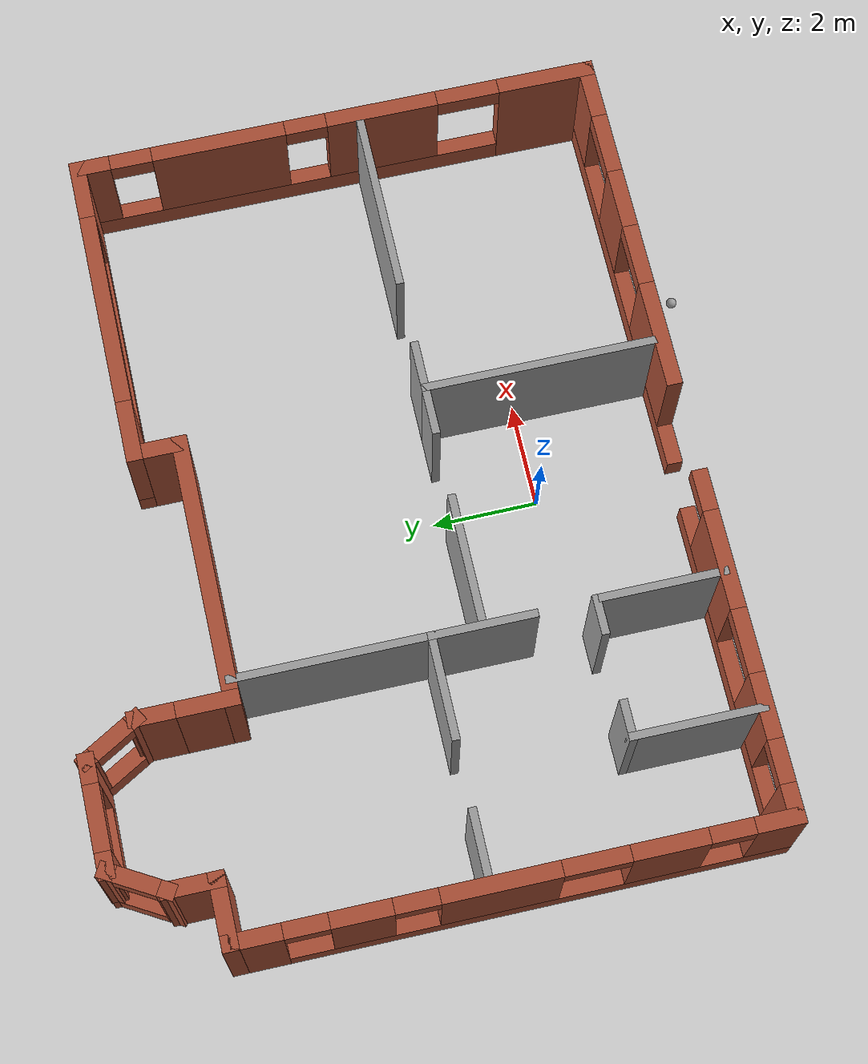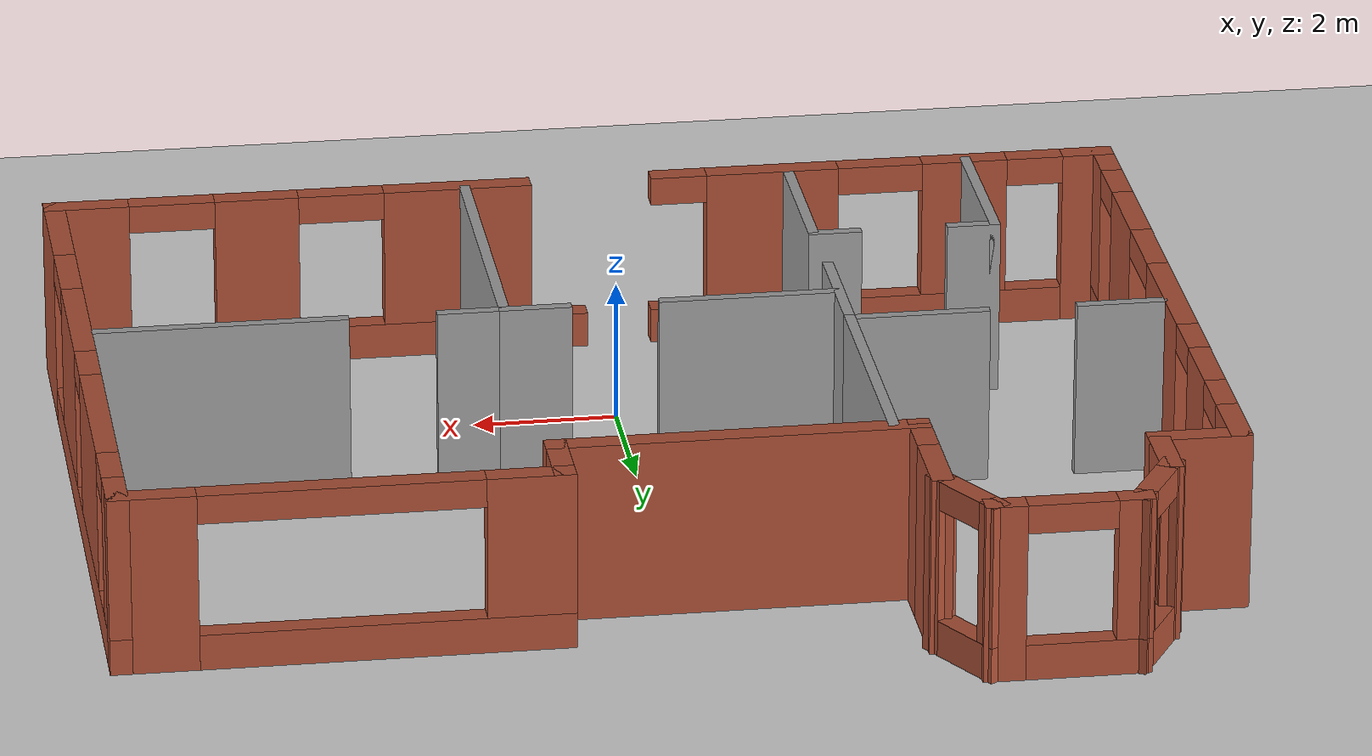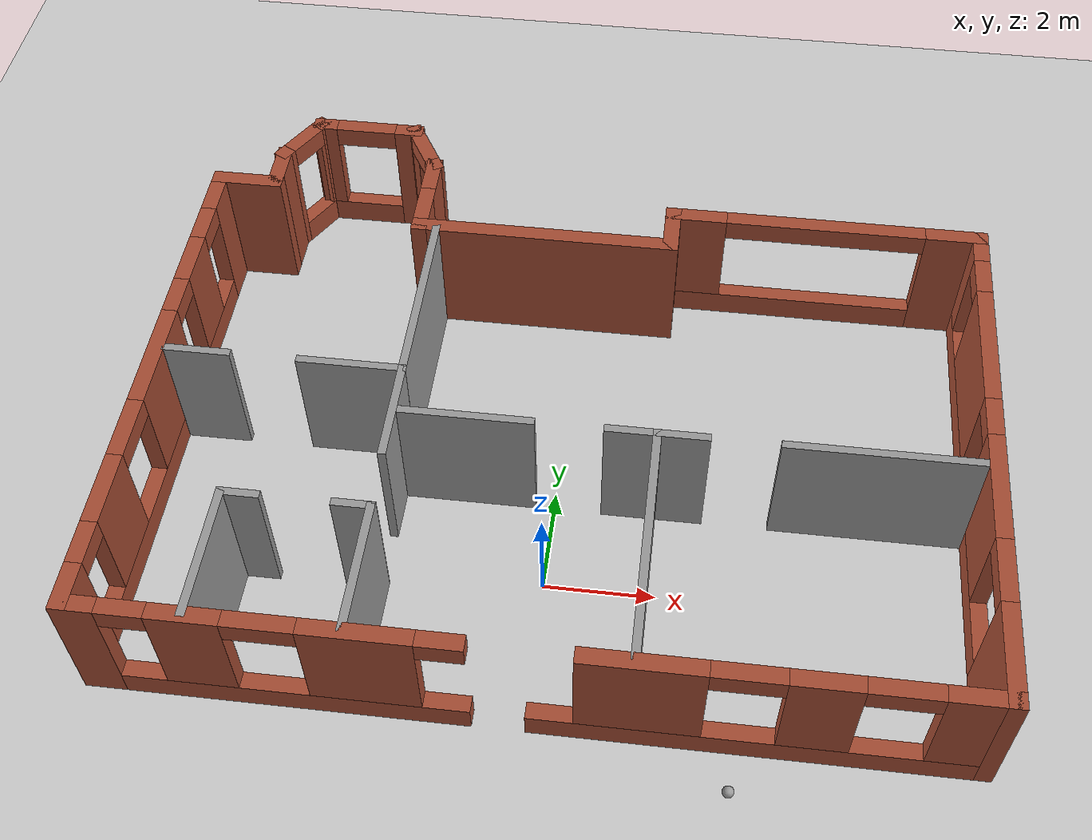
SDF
<sdf version="1.6">
 <world name="default">
  <plugin name="hello" filename="libhello.so"/>
  <light name="sun" type="directional">
   <pose>0 0 10 0 -0 0</pose>
   <diffuse>0.8 0.8 0.8 1</diffuse>
   <specular>0.2 0.2 0.2 1</specular>
   <attenuation>
    <range>1000</range>
    <constant>0.9</constant>
    <linear>0.01</linear>
    <quadratic>0.001</quadratic>
   </attenuation>
   <direction>-0.5 0.1 -0.9</direction>
  </light>
  <model name="ground_plane">
   <static>1</static>
   <link name="link">
    <collision name="collision">
     <geometry><plane><normal>0 0 1</normal><size>100 100</size></plane></geometry>
     <surface>
      <contact><collide_bitmask>65535</collide_bitmask></contact>
      <friction><ode><mu>100</mu><mu2>50</mu2></ode></friction>
     </surface>
    </collision>
    <visual name="visual">
     <cast_shadows>0</cast_shadows>
     <geometry><plane><normal>0 0 1</normal><size>100 100</size></plane></geometry>
     <material>
      <script><uri>file://media/materials/scripts/gazebo.material</uri><name>Gazebo/Grey</name></script>
     </material>
    </visual>
   </link>
  </model>
  <gravity>0 0 -9.8</gravity>
  <magnetic_field>6e-06 2.3e-05 -4.2e-05</magnetic_field>
  <atmosphere type="adiabatic"/>
  <physics name="default_physics" default="0" type="ode">
   <max_step_size>0.001</max_step_size>
   <real_time_factor>1</real_time_factor>
   <real_time_update_rate>1000</real_time_update_rate>
  </physics>
  <scene><ambient>0.4 0.4 0.4 1</ambient><background>0.7 0.7 0.7 1</background><shadows>1</shadows></scene>
  <spherical_coordinates>
   <surface_model>EARTH_WGS84</surface_model>
   <latitude_deg>0</latitude_deg>
   <longitude_deg>0</longitude_deg>
   <elevation>0</elevation>
   <heading_deg>0</heading_deg>
  </spherical_coordinates>
  <model name="mybuilding">
   <pose>0.115 3.1719 0 0 -0 0</pose>
   <link name="Wall_104">
    <collision name="Wall_104_Collision">
     <geometry><box><size>2.46958 0.15 2.5</size></box></geometry>
     <pose>0 0 1.25 0 -0 0</pose>
    </collision>
    <visual name="Wall_104_Visual">
     <pose>0 0 1.25 0 -0 0</pose>
     <geometry><box><size>2.46958 0.15 2.5</size></box></geometry>
     <material>
      <script><uri>file://media/materials/scripts/gazebo.material</uri><name>Gazebo/Grey</name></script>
      <ambient>1 1 1 1</ambient>
     </material>
     <meta><layer>0</layer></meta>
    </visual>
    <pose>-2.91739 -4.64446 0 0 -0 -1.5708</pose>
   </link>
   <link name="Wall_106">
    <collision name="Wall_106_Collision">
     <geometry><box><size>1 0.15 2.5</size></box></geometry>
     <pose>0 0 1.25 0 -0 0</pose>
    </collision>
    <visual name="Wall_106_Visual">
     <pose>0 0 1.25 0 -0 0</pose>
     <geometry><box><size>1 0.15 2.5</size></box></geometry>
     <material>
      <script><uri>file://media/materials/scripts/gazebo.material</uri><name>Gazebo/Grey</name></script>
      <ambient>1 1 1 1</ambient>
     </material>
     <meta><layer>0</layer></meta>
    </visual>
    <pose>2.09395 -1.40936 0 0 -0 0</pose>
   </link>
   <link name="Wall_108">
    <collision name="Wall_108_Collision">
     <geometry><box><size>3.5 0.15 2.5</size></box></geometry>
     <pose>0 0 1.25 0 -0 0</pose>
    </collision>
    <visual name="Wall_108_Visual">
     <pose>0 0 1.25 0 -0 0</pose>
     <geometry><box><size>3.5 0.15 2.5</size></box></geometry>
     <material>
      <script><uri>file://media/materials/scripts/gazebo.material</uri><name>Gazebo/Grey</name></script>
      <ambient>1 1 1 1</ambient>
     </material>
     <meta><layer>0</layer></meta>
    </visual>
    <pose>5.54395 -1.40936 0 0 -0 0</pose>
   </link>
   <link name="Wall_111">
    <collision name="Wall_111_Collision">
     <geometry><box><size>2 0.15 2.5</size></box></geometry>
     <pose>0 0 1.25 0 -0 0</pose>
    </collision>
    <visual name="Wall_111_Visual">
     <pose>0 0 1.25 0 -0 0</pose>
     <geometry><box><size>2 0.15 2.5</size></box></geometry>
     <material>
      <script><uri>file://media/materials/scripts/gazebo.material</uri><name>Gazebo/Grey</name></script>
      <ambient>1 1 1 1</ambient>
     </material>
     <meta><layer>0</layer></meta>
    </visual>
    <pose>-3.87183 -0.484139 0 0 -0 0</pose>
   </link>
   <link name="Wall_113">
    <collision name="Wall_113_Collision">
     <geometry><box><size>0.75 0.15 2.5</size></box></geometry>
     <pose>0 0 1.25 0 -0 0</pose>
    </collision>
    <visual name="Wall_113_Visual">
     <pose>0 0 1.25 0 -0 0</pose>
     <geometry><box><size>0.75 0.15 2.5</size></box></geometry>
     <material>
      <script><uri>file://media/materials/scripts/gazebo.material</uri><name>Gazebo/Grey</name></script>
      <ambient>1 1 1 1</ambient>
     </material>
     <meta><layer>0</layer></meta>
    </visual>
    <pose>-3.21739 -3.46946 0 0 -0 3.14159</pose>
   </link>
   <link name="Wall_120">
    <collision name="Wall_120_Collision">
     <geometry><box><size>0.75 0.15 2.5</size></box></geometry>
     <pose>0 0 1.25 0 -0 0</pose>
    </collision>
    <visual name="Wall_120_Visual">
     <pose>0 0 1.25 0 -0 0</pose>
     <geometry><box><size>0.75 0.15 2.5</size></box></geometry>
     <material>
      <script><uri>file://media/materials/scripts/gazebo.material</uri><name>Gazebo/Grey</name></script>
      <ambient>1 1 1 1</ambient>
     </material>
     <meta><layer>0</layer></meta>
    </visual>
    <pose>-5.16739 -3.46946 0 0 -0 3.14159</pose>
   </link>
   <link name="Wall_121">
    <collision name="Wall_121_Collision">
     <geometry><box><size>2.5 0.15 2.5</size></box></geometry>
     <pose>0 0 1.25 0 -0 0</pose>
    </collision>
    <visual name="Wall_121_Visual">
     <pose>0 0 1.25 0 -0 0</pose>
     <geometry><box><size>2.5 0.15 2.5</size></box></geometry>
     <material>
      <script><uri>file://media/materials/scripts/gazebo.material</uri><name>Gazebo/Grey</name></script>
      <ambient>1 1 1 1</ambient>
     </material>
     <meta><layer>0</layer></meta>
    </visual>
    <pose>-5.46739 -4.64446 0 0 -0 -1.5708</pose>
   </link>
   <link name="Wall_123">
    <collision name="Wall_123_Collision">
     <geometry><box><size>1 0.15 2.5</size></box></geometry>
     <pose>0 0 1.25 0 -0 0</pose>
    </collision>
    <visual name="Wall_123_Visual">
     <pose>0 0 1.25 0 -0 0</pose>
     <geometry><box><size>1 0.15 2.5</size></box></geometry>
     <material>
      <script><uri>file://media/materials/scripts/gazebo.material</uri><name>Gazebo/Grey</name></script>
      <ambient>1 1 1 1</ambient>
     </material>
     <meta><layer>0</layer></meta>
    </visual>
    <pose>1.24395 -1.40936 0 0 -0 3.14159</pose>
   </link>
   <link name="Wall_127">
    <collision name="Wall_127_Collision">
     <geometry><box><size>3.75 0.15 2.5</size></box></geometry>
     <pose>0 0 1.25 0 -0 0</pose>
    </collision>
    <visual name="Wall_127_Visual">
     <pose>0 0 1.25 0 -0 0</pose>
     <geometry><box><size>3.75 0.15 2.5</size></box></geometry>
     <material>
      <script><uri>file://media/materials/scripts/gazebo.material</uri><name>Gazebo/Grey</name></script>
      <ambient>1 1 1 1</ambient>
     </material>
     <meta><layer>0</layer></meta>
    </visual>
    <pose>-2.94683 1.31586 0 0 -0 1.5708</pose>
   </link>
   <link name="Wall_129">
    <collision name="Wall_129_Collision">
     <geometry><box><size>2 0.15 2.5</size></box></geometry>
     <pose>0 0 1.25 0 -0 0</pose>
    </collision>
    <visual name="Wall_129_Visual">
     <pose>0 0 1.25 0 -0 0</pose>
     <geometry><box><size>2 0.15 2.5</size></box></geometry>
     <material>
      <script><uri>file://media/materials/scripts/gazebo.material</uri><name>Gazebo/Grey</name></script>
      <ambient>1 1 1 1</ambient>
     </material>
     <meta><layer>0</layer></meta>
    </visual>
    <pose>-2.94683 -1.40914 0 0 -0 -1.5708</pose>
   </link>
   <link name="Wall_132">
    <collision name="Wall_132_Collision">
     <geometry><box><size>2.5 0.15 2.5</size></box></geometry>
     <pose>0 0 1.25 0 -0 0</pose>
    </collision>
    <visual name="Wall_132_Visual">
     <pose>0 0 1.25 0 -0 0</pose>
     <geometry><box><size>2.5 0.15 2.5</size></box></geometry>
     <material>
      <script><uri>file://media/materials/scripts/gazebo.material</uri><name>Gazebo/Grey</name></script>
      <ambient>1 1 1 1</ambient>
     </material>
     <meta><layer>0</layer></meta>
    </visual>
    <pose>-1.70605 -1.40936 0 0 -0 3.14159</pose>
   </link>
   <link name="Wall_50">
    <pose>-7.435 -0.928903 0 0 -0 -1.5708</pose>
    <visual name="Wall_50_Visual_0">
     <pose>-4.54792 0 1.25 0 -0 0</pose>
     <geometry><box><size>1.05393 0.3 2.5</size></box></geometry>
     <material>
      <script><uri>file://media/materials/scripts/gazebo.material</uri><name>Gazebo/Bricks</name></script>
      <ambient>1 1 1 1</ambient>
     </material>
     <meta><layer>0</layer></meta>
    </visual>
    <collision name="Wall_50_Collision_0">
     <geometry><box><size>1.05393 0.3 2.5</size></box></geometry>
     <pose>-4.54792 0 1.25 0 -0 0</pose>
    </collision>
    <visual name="Wall_50_Visual_1">
     <pose>0.526964 0 0.25 0 -0 0</pose>
     <geometry><box><size>9.09584 0.3 0.5</size></box></geometry>
     <material>
      <script><uri>file://media/materials/scripts/gazebo.material</uri><name>Gazebo/Bricks</name></script>
      <ambient>1 1 1 1</ambient>
     </material>
     <meta><layer>0</layer></meta>
    </visual>
    <collision name="Wall_50_Collision_1">
     <geometry><box><size>9.09584 0.3 0.5</size></box></geometry>
     <pose>0.526964 0 0.25 0 -0 0</pose>
    </collision>
    <visual name="Wall_50_Visual_2">
     <pose>-2.66775 0 1.5 0 -0 0</pose>
     <geometry><box><size>1.10642 0.3 2</size></box></geometry>
     <material>
      <script><uri>file://media/materials/scripts/gazebo.material</uri><name>Gazebo/Bricks</name></script>
      <ambient>1 1 1 1</ambient>
     </material>
     <meta><layer>0</layer></meta>
    </visual>
    <collision name="Wall_50_Collision_2">
     <geometry><box><size>1.10642 0.3 2</size></box></geometry>
     <pose>-2.66775 0 1.5 0 -0 0</pose>
    </collision>
    <visual name="Wall_50_Visual_3">
     <pose>-0.24918 0 1.5 0 -0 0</pose>
     <geometry><box><size>2.13072 0.3 2</size></box></geometry>
     <material>
      <script><uri>file://media/materials/scripts/gazebo.material</uri><name>Gazebo/Bricks</name></script>
      <ambient>1 1 1 1</ambient>
     </material>
     <meta><layer>0</layer></meta>
    </visual>
    <collision name="Wall_50_Collision_3">
     <geometry><box><size>2.13072 0.3 2</size></box></geometry>
     <pose>-0.24918 0 1.5 0 -0 0</pose>
    </collision>
    <visual name="Wall_50_Visual_4">
     <pose>2.70551 0 1.5 0 -0 0</pose>
     <geometry><box><size>1.37865 0.3 2</size></box></geometry>
     <material>
      <script><uri>file://media/materials/scripts/gazebo.material</uri><name>Gazebo/Bricks</name></script>
      <ambient>1 1 1 1</ambient>
     </material>
     <meta><layer>0</layer></meta>
    </visual>
    <collision name="Wall_50_Collision_4">
     <geometry><box><size>1.37865 0.3 2</size></box></geometry>
     <pose>2.70551 0 1.5 0 -0 0</pose>
    </collision>
    <visual name="Wall_50_Visual_5">
     <pose>4.63486 0 1.5 0 -0 0</pose>
     <geometry><box><size>0.880056 0.3 2</size></box></geometry>
     <material>
      <script><uri>file://media/materials/scripts/gazebo.material</uri><name>Gazebo/Bricks</name></script>
      <ambient>1 1 1 1</ambient>
     </material>
     <meta><layer>0</layer></meta>
    </visual>
    <collision name="Wall_50_Collision_5">
     <geometry><box><size>0.880056 0.3 2</size></box></geometry>
     <pose>4.63486 0 1.5 0 -0 0</pose>
    </collision>
    <visual name="Wall_50_Visual_6">
     <pose>-3.62096 0 2.3 0 -0 0</pose>
     <geometry><box><size>0.8 0.3 0.4</size></box></geometry>
     <material>
      <script><uri>file://media/materials/scripts/gazebo.material</uri><name>Gazebo/Bricks</name></script>
      <ambient>1 1 1 1</ambient>
     </material>
     <meta><layer>0</layer></meta>
    </visual>
    <collision name="Wall_50_Collision_6">
     <geometry><box><size>0.8 0.3 0.4</size></box></geometry>
     <pose>-3.62096 0 2.3 0 -0 0</pose>
    </collision>
    <visual name="Wall_50_Visual_7">
     <pose>-1.71454 0 2.3 0 -0 0</pose>
     <geometry><box><size>0.8 0.3 0.4</size></box></geometry>
     <material>
      <script><uri>file://media/materials/scripts/gazebo.material</uri><name>Gazebo/Bricks</name></script>
      <ambient>1 1 1 1</ambient>
     </material>
     <meta><layer>0</layer></meta>
    </visual>
    <collision name="Wall_50_Collision_7">
     <geometry><box><size>0.8 0.3 0.4</size></box></geometry>
     <pose>-1.71454 0 2.3 0 -0 0</pose>
    </collision>
    <visual name="Wall_50_Visual_8">
     <pose>1.41618 0 2.3 0 -0 0</pose>
     <geometry><box><size>1.2 0.3 0.4</size></box></geometry>
     <material>
      <script><uri>file://media/materials/scripts/gazebo.material</uri><name>Gazebo/Bricks</name></script>
      <ambient>1 1 1 1</ambient>
     </material>
     <meta><layer>0</layer></meta>
    </visual>
    <collision name="Wall_50_Collision_8">
     <geometry><box><size>1.2 0.3 0.4</size></box></geometry>
     <pose>1.41618 0 2.3 0 -0 0</pose>
    </collision>
    <visual name="Wall_50_Visual_9">
     <pose>3.79483 0 2.3 0 -0 0</pose>
     <geometry><box><size>0.8 0.3 0.4</size></box></geometry>
     <material>
      <script><uri>file://media/materials/scripts/gazebo.material</uri><name>Gazebo/Bricks</name></script>
      <ambient>1 1 1 1</ambient>
     </material>
     <meta><layer>0</layer></meta>
    </visual>
    <collision name="Wall_50_Collision_9">
     <geometry><box><size>0.8 0.3 0.4</size></box></geometry>
     <pose>3.79483 0 2.3 0 -0 0</pose>
    </collision>
   </link>
   <link name="Wall_51">
    <pose>-0 -5.8539 0 0 -0 0</pose>
    <visual name="Wall_51_Visual_0">
     <pose>-7.21587 0 1.25 0 -0 0</pose>
     <geometry><box><size>0.738261 0.3 2.5</size></box></geometry>
     <material>
      <script><uri>file://media/materials/scripts/gazebo.material</uri><name>Gazebo/Bricks</name></script>
      <ambient>1 1 1 1</ambient>
     </material>
     <meta><layer>0</layer></meta>
    </visual>
    <collision name="Wall_51_Collision_0">
     <geometry><box><size>0.738261 0.3 2.5</size></box></geometry>
     <pose>-7.21587 0 1.25 0 -0 0</pose>
    </collision>
    <visual name="Wall_51_Visual_1">
     <pose>3.76088 0 0.25 0 -0 0</pose>
     <geometry><box><size>7.64824 0.3 0.5</size></box></geometry>
     <material>
      <script><uri>file://media/materials/scripts/gazebo.material</uri><name>Gazebo/Bricks</name></script>
      <ambient>1 1 1 1</ambient>
     </material>
     <meta><layer>0</layer></meta>
    </visual>
    <collision name="Wall_51_Collision_1">
     <geometry><box><size>7.64824 0.3 0.5</size></box></geometry>
     <pose>3.76088 0 0.25 0 -0 0</pose>
    </collision>
    <visual name="Wall_51_Visual_2">
     <pose>-3.90499 0 0.25 0 -0 0</pose>
     <geometry><box><size>5.8835 0.3 0.5</size></box></geometry>
     <material>
      <script><uri>file://media/materials/scripts/gazebo.material</uri><name>Gazebo/Bricks</name></script>
      <ambient>1 1 1 1</ambient>
     </material>
     <meta><layer>0</layer></meta>
    </visual>
    <collision name="Wall_51_Collision_2">
     <geometry><box><size>5.8835 0.3 0.5</size></box></geometry>
     <pose>-3.90499 0 0.25 0 -0 0</pose>
    </collision>
    <visual name="Wall_51_Visual_3">
     <pose>1.77472 0 1.5 0 -0 0</pose>
     <geometry><box><size>2.08637 0.3 2</size></box></geometry>
     <material>
      <script><uri>file://media/materials/scripts/gazebo.material</uri><name>Gazebo/Bricks</name></script>
      <ambient>1 1 1 1</ambient>
     </material>
     <meta><layer>0</layer></meta>
    </visual>
    <collision name="Wall_51_Collision_3">
     <geometry><box><size>2.08637 0.3 2</size></box></geometry>
     <pose>1.77472 0 1.5 0 -0 0</pose>
    </collision>
    <visual name="Wall_51_Visual_4">
     <pose>4.60722 0 1.5 0 -0 0</pose>
     <geometry><box><size>1.17865 0.3 2</size></box></geometry>
     <material>
      <script><uri>file://media/materials/scripts/gazebo.material</uri><name>Gazebo/Bricks</name></script>
      <ambient>1 1 1 1</ambient>
     </material>
     <meta><layer>0</layer></meta>
    </visual>
    <collision name="Wall_51_Collision_4">
     <geometry><box><size>1.17865 0.3 2</size></box></geometry>
     <pose>4.60722 0 1.5 0 -0 0</pose>
    </collision>
    <visual name="Wall_51_Visual_5">
     <pose>6.99077 0 1.5 0 -0 0</pose>
     <geometry><box><size>1.18845 0.3 2</size></box></geometry>
     <material>
      <script><uri>file://media/materials/scripts/gazebo.material</uri><name>Gazebo/Bricks</name></script>
      <ambient>1 1 1 1</ambient>
     </material>
     <meta><layer>0</layer></meta>
    </visual>
    <collision name="Wall_51_Collision_5">
     <geometry><box><size>1.18845 0.3 2</size></box></geometry>
     <pose>6.99077 0 1.5 0 -0 0</pose>
    </collision>
    <visual name="Wall_51_Visual_6">
     <pose>-5.44049 0 1.5 0 -0 0</pose>
     <geometry><box><size>1.21249 0.3 2</size></box></geometry>
     <material>
      <script><uri>file://media/materials/scripts/gazebo.material</uri><name>Gazebo/Bricks</name></script>
      <ambient>1 1 1 1</ambient>
     </material>
     <meta><layer>0</layer></meta>
    </visual>
    <collision name="Wall_51_Collision_6">
     <geometry><box><size>1.21249 0.3 2</size></box></geometry>
     <pose>-5.44049 0 1.5 0 -0 0</pose>
    </collision>
    <visual name="Wall_51_Visual_7">
     <pose>-2.69613 0 1.5 0 -0 0</pose>
     <geometry><box><size>1.87624 0.3 2</size></box></geometry>
     <material>
      <script><uri>file://media/materials/scripts/gazebo.material</uri><name>Gazebo/Bricks</name></script>
      <ambient>1 1 1 1</ambient>
     </material>
     <meta><layer>0</layer></meta>
    </visual>
    <collision name="Wall_51_Collision_7">
     <geometry><box><size>1.87624 0.3 2</size></box></geometry>
     <pose>-2.69613 0 1.5 0 -0 0</pose>
    </collision>
    <visual name="Wall_51_Visual_8">
     <pose>-2.69613 0 1.5 0 -0 0</pose>
     <geometry><box><size>1.87624 0.3 2</size></box></geometry>
     <material>
      <script><uri>file://media/materials/scripts/gazebo.material</uri><name>Gazebo/Bricks</name></script>
      <ambient>1 1 1 1</ambient>
     </material>
     <meta><layer>0</layer></meta>
    </visual>
    <collision name="Wall_51_Collision_8">
     <geometry><box><size>1.87624 0.3 2</size></box></geometry>
     <pose>-2.69613 0 1.5 0 -0 0</pose>
    </collision>
    <visual name="Wall_51_Visual_9">
     <pose>-6.44674 0 2.3 0 -0 0</pose>
     <geometry><box><size>0.8 0.3 0.4</size></box></geometry>
     <material>
      <script><uri>file://media/materials/scripts/gazebo.material</uri><name>Gazebo/Bricks</name></script>
      <ambient>1 1 1 1</ambient>
     </material>
     <meta><layer>0</layer></meta>
    </visual>
    <collision name="Wall_51_Collision_9">
     <geometry><box><size>0.8 0.3 0.4</size></box></geometry>
     <pose>-6.44674 0 2.3 0 -0 0</pose>
    </collision>
    <visual name="Wall_51_Visual_10">
     <pose>3.4179 0 2.3 0 -0 0</pose>
     <geometry><box><size>1.2 0.3 0.4</size></box></geometry>
     <material>
      <script><uri>file://media/materials/scripts/gazebo.material</uri><name>Gazebo/Bricks</name></script>
      <ambient>1 1 1 1</ambient>
     </material>
     <meta><layer>0</layer></meta>
    </visual>
    <collision name="Wall_51_Collision_10">
     <geometry><box><size>1.2 0.3 0.4</size></box></geometry>
     <pose>3.4179 0 2.3 0 -0 0</pose>
    </collision>
    <visual name="Wall_51_Visual_11">
     <pose>5.79655 0 2.3 0 -0 0</pose>
     <geometry><box><size>1.2 0.3 0.4</size></box></geometry>
     <material>
      <script><uri>file://media/materials/scripts/gazebo.material</uri><name>Gazebo/Bricks</name></script>
      <ambient>1 1 1 1</ambient>
     </material>
     <meta><layer>0</layer></meta>
    </visual>
    <collision name="Wall_51_Collision_11">
     <geometry><box><size>1.2 0.3 0.4</size></box></geometry>
     <pose>5.79655 0 2.3 0 -0 0</pose>
    </collision>
    <visual name="Wall_51_Visual_12">
     <pose>-4.23425 0 2.3 0 -0 0</pose>
     <geometry><box><size>1.2 0.3 0.4</size></box></geometry>
     <material>
      <script><uri>file://media/materials/scripts/gazebo.material</uri><name>Gazebo/Bricks</name></script>
      <ambient>1 1 1 1</ambient>
     </material>
     <meta><layer>0</layer></meta>
    </visual>
    <collision name="Wall_51_Collision_12">
     <geometry><box><size>1.2 0.3 0.4</size></box></geometry>
     <pose>-4.23425 0 2.3 0 -0 0</pose>
    </collision>
    <visual name="Wall_51_Visual_13">
     <pose>-1.36062 0 2.3 0 -0 0</pose>
     <geometry><box><size>0.79477 0.3 0.4</size></box></geometry>
     <material>
      <script><uri>file://media/materials/scripts/gazebo.material</uri><name>Gazebo/Bricks</name></script>
      <ambient>1 1 1 1</ambient>
     </material>
     <meta><layer>0</layer></meta>
    </visual>
    <collision name="Wall_51_Collision_13">
     <geometry><box><size>0.79477 0.3 0.4</size></box></geometry>
     <pose>-1.36062 0 2.3 0 -0 0</pose>
    </collision>
    <visual name="Wall_51_Visual_14">
     <pose>-1.36062 0 2.3 0 -0 0</pose>
     <geometry><box><size>0.79477 0.3 0.4</size></box></geometry>
     <material>
      <script><uri>file://media/materials/scripts/gazebo.material</uri><name>Gazebo/Bricks</name></script>
      <ambient>1 1 1 1</ambient>
     </material>
     <meta><layer>0</layer></meta>
    </visual>
    <collision name="Wall_51_Collision_14">
     <geometry><box><size>0.79477 0.3 0.4</size></box></geometry>
     <pose>-1.36062 0 2.3 0 -0 0</pose>
    </collision>
   </link>
   <link name="Wall_52">
    <pose>7.435 -0.928903 0 0 -0 1.5708</pose>
    <visual name="Wall_52_Visual_0">
     <pose>-4.13433 0 1.25 0 -0 0</pose>
     <geometry><box><size>1.88156 0.3 2.5</size></box></geometry>
     <material>
      <script><uri>file://media/materials/scripts/gazebo.material</uri><name>Gazebo/Bricks</name></script>
      <ambient>1 1 1 1</ambient>
     </material>
     <meta><layer>0</layer></meta>
    </visual>
    <collision name="Wall_52_Collision_0">
     <geometry><box><size>1.88156 0.3 2.5</size></box></geometry>
     <pose>-4.13433 0 1.25 0 -0 0</pose>
    </collision>
    <visual name="Wall_52_Visual_1">
     <pose>0.940781 0 0.25 0 -0 0</pose>
     <geometry><box><size>8.26867 0.3 0.5</size></box></geometry>
     <material>
      <script><uri>file://media/materials/scripts/gazebo.material</uri><name>Gazebo/Bricks</name></script>
      <ambient>1 1 1 1</ambient>
     </material>
     <meta><layer>0</layer></meta>
    </visual>
    <collision name="Wall_52_Collision_1">
     <geometry><box><size>8.26867 0.3 0.5</size></box></geometry>
     <pose>0.940781 0 0.25 0 -0 0</pose>
    </collision>
    <visual name="Wall_52_Visual_2">
     <pose>-0.919448 0 1.5 0 -0 0</pose>
     <geometry><box><size>2.14821 0.3 2</size></box></geometry>
     <material>
      <script><uri>file://media/materials/scripts/gazebo.material</uri><name>Gazebo/Bricks</name></script>
      <ambient>1 1 1 1</ambient>
     </material>
     <meta><layer>0</layer></meta>
    </visual>
    <collision name="Wall_52_Collision_2">
     <geometry><box><size>2.14821 0.3 2</size></box></geometry>
     <pose>-0.919448 0 1.5 0 -0 0</pose>
    </collision>
    <visual name="Wall_52_Visual_3">
     <pose>2.23647 0 1.5 0 -0 0</pose>
     <geometry><box><size>2.56363 0.3 2</size></box></geometry>
     <material>
      <script><uri>file://media/materials/scripts/gazebo.material</uri><name>Gazebo/Bricks</name></script>
      <ambient>1 1 1 1</ambient>
     </material>
     <meta><layer>0</layer></meta>
    </visual>
    <collision name="Wall_52_Collision_3">
     <geometry><box><size>2.56363 0.3 2</size></box></geometry>
     <pose>2.23647 0 1.5 0 -0 0</pose>
    </collision>
    <visual name="Wall_52_Visual_4">
     <pose>4.6967 0 1.5 0 -0 0</pose>
     <geometry><box><size>0.756827 0.3 2</size></box></geometry>
     <material>
      <script><uri>file://media/materials/scripts/gazebo.material</uri><name>Gazebo/Bricks</name></script>
      <ambient>1 1 1 1</ambient>
     </material>
     <meta><layer>0</layer></meta>
    </visual>
    <collision name="Wall_52_Collision_4">
     <geometry><box><size>0.756827 0.3 2</size></box></geometry>
     <pose>4.6967 0 1.5 0 -0 0</pose>
    </collision>
    <visual name="Wall_52_Visual_5">
     <pose>-2.59355 0 2.3 0 -0 0</pose>
     <geometry><box><size>1.2 0.3 0.4</size></box></geometry>
     <material>
      <script><uri>file://media/materials/scripts/gazebo.material</uri><name>Gazebo/Bricks</name></script>
      <ambient>1 1 1 1</ambient>
     </material>
     <meta><layer>0</layer></meta>
    </visual>
    <collision name="Wall_52_Collision_5">
     <geometry><box><size>1.2 0.3 0.4</size></box></geometry>
     <pose>-2.59355 0 2.3 0 -0 0</pose>
    </collision>
    <visual name="Wall_52_Visual_6">
     <pose>0.554658 0 2.3 0 -0 0</pose>
     <geometry><box><size>0.8 0.3 0.4</size></box></geometry>
     <material>
      <script><uri>file://media/materials/scripts/gazebo.material</uri><name>Gazebo/Bricks</name></script>
      <ambient>1 1 1 1</ambient>
     </material>
     <meta><layer>0</layer></meta>
    </visual>
    <collision name="Wall_52_Collision_6">
     <geometry><box><size>0.8 0.3 0.4</size></box></geometry>
     <pose>0.554658 0 2.3 0 -0 0</pose>
    </collision>
    <visual name="Wall_52_Visual_7">
     <pose>3.91829 0 2.3 0 -0 0</pose>
     <geometry><box><size>0.8 0.3 0.4</size></box></geometry>
     <material>
      <script><uri>file://media/materials/scripts/gazebo.material</uri><name>Gazebo/Bricks</name></script>
      <ambient>1 1 1 1</ambient>
     </material>
     <meta><layer>0</layer></meta>
    </visual>
    <collision name="Wall_52_Collision_7">
     <geometry><box><size>0.8 0.3 0.4</size></box></geometry>
     <pose>3.91829 0 2.3 0 -0 0</pose>
    </collision>
   </link>
   <link name="Wall_57">
    <pose>4.5 3.9961 0 0 -0 3.14159</pose>
    <visual name="Wall_57_Visual_0">
     <pose>-2.49359 0 1.25 0 -0 0</pose>
     <geometry><box><size>1.1832 0.3 2.5</size></box></geometry>
     <material>
      <script><uri>file://media/materials/scripts/gazebo.material</uri><name>Gazebo/Bricks</name></script>
      <ambient>1 1 1 1</ambient>
     </material>
     <meta><layer>0</layer></meta>
    </visual>
    <collision name="Wall_57_Collision_0">
     <geometry><box><size>1.1832 0.3 2.5</size></box></geometry>
     <pose>-2.49359 0 1.25 0 -0 0</pose>
    </collision>
    <visual name="Wall_57_Visual_1">
     <pose>0.591601 0 0.25 0 -0 0</pose>
     <geometry><box><size>4.98717 0.3 0.5</size></box></geometry>
     <material>
      <script><uri>file://media/materials/scripts/gazebo.material</uri><name>Gazebo/Bricks</name></script>
      <ambient>1 1 1 1</ambient>
     </material>
     <meta><layer>0</layer></meta>
    </visual>
    <collision name="Wall_57_Collision_1">
     <geometry><box><size>4.98717 0.3 0.5</size></box></geometry>
     <pose>0.591601 0 0.25 0 -0 0</pose>
    </collision>
    <visual name="Wall_57_Visual_2">
     <pose>2.4916 0 1.5 0 -0 0</pose>
     <geometry><box><size>1.18717 0.3 2</size></box></geometry>
     <material>
      <script><uri>file://media/materials/scripts/gazebo.material</uri><name>Gazebo/Bricks</name></script>
      <ambient>1 1 1 1</ambient>
     </material>
     <meta><layer>0</layer></meta>
    </visual>
    <collision name="Wall_57_Collision_2">
     <geometry><box><size>1.18717 0.3 2</size></box></geometry>
     <pose>2.4916 0 1.5 0 -0 0</pose>
    </collision>
    <visual name="Wall_57_Visual_3">
     <pose>-0.001987 0 2.3 0 -0 0</pose>
     <geometry><box><size>3.8 0.3 0.4</size></box></geometry>
     <material>
      <script><uri>file://media/materials/scripts/gazebo.material</uri><name>Gazebo/Bricks</name></script>
      <ambient>1 1 1 1</ambient>
     </material>
     <meta><layer>0</layer></meta>
    </visual>
    <collision name="Wall_57_Collision_3">
     <geometry><box><size>3.8 0.3 0.4</size></box></geometry>
     <pose>-0.001987 0 2.3 0 -0 0</pose>
    </collision>
   </link>
   <link name="Wall_58">
    <collision name="Wall_58_Collision">
     <geometry><box><size>1.14977 0.3 2.5</size></box></geometry>
     <pose>0 0 1.25 0 -0 0</pose>
    </collision>
    <visual name="Wall_58_Visual">
     <pose>0 0 1.25 0 -0 0</pose>
     <geometry><box><size>1.14977 0.3 2.5</size></box></geometry>
     <material>
      <script><uri>file://media/materials/scripts/gazebo.material</uri><name>Gazebo/Bricks</name></script>
      <ambient>1 1 1 1</ambient>
     </material>
     <meta><layer>0</layer></meta>
    </visual>
    <pose>1.565 3.5711 0 0 -0 -1.5708</pose>
   </link>
   <link name="Wall_68">
    <collision name="Wall_68_Collision">
     <geometry><box><size>1.15023 0.3 2.5</size></box></geometry>
     <pose>0 0 1.25 0 -0 0</pose>
    </collision>
    <visual name="Wall_68_Visual">
     <pose>0 0 1.25 0 -0 0</pose>
     <geometry><box><size>1.15023 0.3 2.5</size></box></geometry>
     <material>
      <script><uri>file://media/materials/scripts/gazebo.material</uri><name>Gazebo/Bricks</name></script>
      <ambient>1 1 1 1</ambient>
     </material>
     <meta><layer>0</layer></meta>
    </visual>
    <pose>-3.285 3.5711 0 0 -0 1.5708</pose>
   </link>
   <link name="Wall_69">
    <collision name="Wall_69_Collision">
     <geometry><box><size>1.15023 0.3 2.5</size></box></geometry>
     <pose>0 0 1.25 0 -0 0</pose>
    </collision>
    <visual name="Wall_69_Visual">
     <pose>0 0 1.25 0 -0 0</pose>
     <geometry><box><size>1.15023 0.3 2.5</size></box></geometry>
     <material>
      <script><uri>file://media/materials/scripts/gazebo.material</uri><name>Gazebo/Bricks</name></script>
      <ambient>1 1 1 1</ambient>
     </material>
     <meta><layer>0</layer></meta>
    </visual>
    <pose>-3.285 4.4211 0 0 -0 1.5708</pose>
   </link>
   <link name="Wall_75">
    <collision name="Wall_75_Collision">
     <geometry><box><size>1.15 0.3 2.5</size></box></geometry>
     <pose>0 0 1.25 0 -0 0</pose>
    </collision>
    <visual name="Wall_75_Visual">
     <pose>0 0 1.25 0 -0 0</pose>
     <geometry><box><size>1.15 0.3 2.5</size></box></geometry>
     <material>
      <script><uri>file://media/materials/scripts/gazebo.material</uri><name>Gazebo/Bricks</name></script>
      <ambient>1 1 1 1</ambient>
     </material>
     <meta><layer>0</layer></meta>
    </visual>
    <pose>-6.337 4.4211 0 0 -0 -1.5708</pose>
   </link>
   <link name="Wall_76">
    <collision name="Wall_76_Collision">
     <geometry><box><size>1.39837 0.3 2.5</size></box></geometry>
     <pose>0 0 1.25 0 -0 0</pose>
    </collision>
    <visual name="Wall_76_Visual">
     <pose>0 0 1.25 0 -0 0</pose>
     <geometry><box><size>1.39837 0.3 2.5</size></box></geometry>
     <material>
      <script><uri>file://media/materials/scripts/gazebo.material</uri><name>Gazebo/Bricks</name></script>
      <ambient>1 1 1 1</ambient>
     </material>
     <meta><layer>0</layer></meta>
    </visual>
    <pose>-6.886 3.9961 0 0 -0 3.14159</pose>
   </link>
   <link name="Wall_78">
    <pose>-6.062 5.3226 0 0 -0 1.04737</pose>
    <visual name="Wall_78_Visual_0">
     <pose>-0.549819 0 1.25 0 -0 0</pose>
     <geometry><box><size>0.300684 0.3 2.5</size></box></geometry>
     <material>
      <script><uri>file://media/materials/scripts/gazebo.material</uri><name>Gazebo/Bricks</name></script>
      <ambient>1 1 1 1</ambient>
     </material>
     <meta><layer>0</layer></meta>
    </visual>
    <collision name="Wall_78_Collision_0">
     <geometry><box><size>0.300684 0.3 2.5</size></box></geometry>
     <pose>-0.549819 0 1.25 0 -0 0</pose>
    </collision>
    <visual name="Wall_78_Visual_1">
     <pose>0.150342 0 0.25 0 -0 0</pose>
     <geometry><box><size>1.09964 0.3 0.5</size></box></geometry>
     <material>
      <script><uri>file://media/materials/scripts/gazebo.material</uri><name>Gazebo/Bricks</name></script>
      <ambient>1 1 1 1</ambient>
     </material>
     <meta><layer>0</layer></meta>
    </visual>
    <collision name="Wall_78_Collision_1">
     <geometry><box><size>1.09964 0.3 0.5</size></box></geometry>
     <pose>0.150342 0 0.25 0 -0 0</pose>
    </collision>
    <visual name="Wall_78_Visual_2">
     <pose>0.550342 0 1.5 0 -0 0</pose>
     <geometry><box><size>0.299638 0.3 2</size></box></geometry>
     <material>
      <script><uri>file://media/materials/scripts/gazebo.material</uri><name>Gazebo/Bricks</name></script>
      <ambient>1 1 1 1</ambient>
     </material>
     <meta><layer>0</layer></meta>
    </visual>
    <collision name="Wall_78_Collision_2">
     <geometry><box><size>0.299638 0.3 2</size></box></geometry>
     <pose>0.550342 0 1.5 0 -0 0</pose>
    </collision>
    <visual name="Wall_78_Visual_3">
     <pose>0.000523 0 2.3 0 -0 0</pose>
     <geometry><box><size>0.8 0.3 0.4</size></box></geometry>
     <material>
      <script><uri>file://media/materials/scripts/gazebo.material</uri><name>Gazebo/Bricks</name></script>
      <ambient>1 1 1 1</ambient>
     </material>
     <meta><layer>0</layer></meta>
    </visual>
    <collision name="Wall_78_Collision_3">
     <geometry><box><size>0.8 0.3 0.4</size></box></geometry>
     <pose>0.000523 0 2.3 0 -0 0</pose>
    </collision>
   </link>
   <link name="Wall_80">
    <pose>-3.56 5.3226 0 0 -0 2.09423</pose>
    <visual name="Wall_80_Visual_0">
     <pose>-0.550396 0 1.25 0 -0 0</pose>
     <geometry><box><size>0.299594 0.3 2.5</size></box></geometry>
     <material>
      <script><uri>file://media/materials/scripts/gazebo.material</uri><name>Gazebo/Bricks</name></script>
      <ambient>1 1 1 1</ambient>
     </material>
     <meta><layer>0</layer></meta>
    </visual>
    <collision name="Wall_80_Collision_0">
     <geometry><box><size>0.299594 0.3 2.5</size></box></geometry>
     <pose>-0.550396 0 1.25 0 -0 0</pose>
    </collision>
    <visual name="Wall_80_Visual_1">
     <pose>0.149797 0 0.25 0 -0 0</pose>
     <geometry><box><size>1.10079 0.3 0.5</size></box></geometry>
     <material>
      <script><uri>file://media/materials/scripts/gazebo.material</uri><name>Gazebo/Bricks</name></script>
      <ambient>1 1 1 1</ambient>
     </material>
     <meta><layer>0</layer></meta>
    </visual>
    <collision name="Wall_80_Collision_1">
     <geometry><box><size>1.10079 0.3 0.5</size></box></geometry>
     <pose>0.149797 0 0.25 0 -0 0</pose>
    </collision>
    <visual name="Wall_80_Visual_2">
     <pose>0.549797 0 1.5 0 -0 0</pose>
     <geometry><box><size>0.300793 0.3 2</size></box></geometry>
     <material>
      <script><uri>file://media/materials/scripts/gazebo.material</uri><name>Gazebo/Bricks</name></script>
      <ambient>1 1 1 1</ambient>
     </material>
     <meta><layer>0</layer></meta>
    </visual>
    <collision name="Wall_80_Collision_2">
     <geometry><box><size>0.300793 0.3 2</size></box></geometry>
     <pose>0.549797 0 1.5 0 -0 0</pose>
    </collision>
    <visual name="Wall_80_Visual_3">
     <pose>-0.000599 0 2.3 0 -0 0</pose>
     <geometry><box><size>0.8 0.3 0.4</size></box></geometry>
     <material>
      <script><uri>file://media/materials/scripts/gazebo.material</uri><name>Gazebo/Bricks</name></script>
      <ambient>1 1 1 1</ambient>
     </material>
     <meta><layer>0</layer></meta>
    </visual>
    <collision name="Wall_80_Collision_3">
     <geometry><box><size>0.8 0.3 0.4</size></box></geometry>
     <pose>-0.000599 0 2.3 0 -0 0</pose>
    </collision>
   </link>
   <link name="Wall_81">
    <pose>-4.811 5.7991 0 0 -0 3.14159</pose>
    <visual name="Wall_81_Visual_0">
     <pose>-0.844692 0 1.25 0 -0 0</pose>
     <geometry><box><size>0.563073 0.3 2.5</size></box></geometry>
     <material>
      <script><uri>file://media/materials/scripts/gazebo.material</uri><name>Gazebo/Bricks</name></script>
      <ambient>1 1 1 1</ambient>
     </material>
     <meta><layer>0</layer></meta>
    </visual>
    <collision name="Wall_81_Collision_0">
     <geometry><box><size>0.563073 0.3 2.5</size></box></geometry>
     <pose>-0.844692 0 1.25 0 -0 0</pose>
    </collision>
    <visual name="Wall_81_Visual_1">
     <pose>0.281537 0 0.25 0 -0 0</pose>
     <geometry><box><size>1.68938 0.3 0.5</size></box></geometry>
     <material>
      <script><uri>file://media/materials/scripts/gazebo.material</uri><name>Gazebo/Bricks</name></script>
      <ambient>1 1 1 1</ambient>
     </material>
     <meta><layer>0</layer></meta>
    </visual>
    <collision name="Wall_81_Collision_1">
     <geometry><box><size>1.68938 0.3 0.5</size></box></geometry>
     <pose>0.281537 0 0.25 0 -0 0</pose>
    </collision>
    <visual name="Wall_81_Visual_2">
     <pose>0.881537 0 1.5 0 -0 0</pose>
     <geometry><box><size>0.489383 0.3 2</size></box></geometry>
     <material>
      <script><uri>file://media/materials/scripts/gazebo.material</uri><name>Gazebo/Bricks</name></script>
      <ambient>1 1 1 1</ambient>
     </material>
     <meta><layer>0</layer></meta>
    </visual>
    <collision name="Wall_81_Collision_2">
     <geometry><box><size>0.489383 0.3 2</size></box></geometry>
     <pose>0.881537 0 1.5 0 -0 0</pose>
    </collision>
    <visual name="Wall_81_Visual_3">
     <pose>0.036845 0 2.3 0 -0 0</pose>
     <geometry><box><size>1.2 0.3 0.4</size></box></geometry>
     <material>
      <script><uri>file://media/materials/scripts/gazebo.material</uri><name>Gazebo/Bricks</name></script>
      <ambient>1 1 1 1</ambient>
     </material>
     <meta><layer>0</layer></meta>
    </visual>
    <collision name="Wall_81_Collision_3">
     <geometry><box><size>1.2 0.3 0.4</size></box></geometry>
     <pose>0.036845 0 2.3 0 -0 0</pose>
    </collision>
   </link>
   <link name="Wall_83">
    <collision name="Wall_83_Collision">
     <geometry><box><size>5.15 0.3 2.5</size></box></geometry>
     <pose>0 0 1.25 0 -0 0</pose>
    </collision>
    <visual name="Wall_83_Visual">
     <pose>0 0 1.25 0 -0 0</pose>
     <geometry><box><size>5.15 0.3 2.5</size></box></geometry>
     <material>
      <script><uri>file://media/materials/scripts/gazebo.material</uri><name>Gazebo/Bricks</name></script>
      <ambient>1 1 1 1</ambient>
     </material>
     <meta><layer>0</layer></meta>
    </visual>
    <pose>-0.86 3.1461 0 0 -0 0</pose>
   </link>
   <link name="Wall_90">
    <collision name="Wall_90_Collision">
     <geometry><box><size>4.5 0.15 2.5</size></box></geometry>
     <pose>0 0 1.25 0 -0 0</pose>
    </collision>
    <visual name="Wall_90_Visual">
     <pose>0 0 1.25 0 -0 0</pose>
     <geometry><box><size>4.5 0.15 2.5</size></box></geometry>
     <material>
      <script><uri>file://media/materials/scripts/gazebo.material</uri><name>Gazebo/Grey</name></script>
      <ambient>1 1 1 1</ambient>
     </material>
     <meta><layer>0</layer></meta>
    </visual>
    <pose>1.66895 -3.58436 0 0 -0 -1.5708</pose>
   </link>
   <link name="Wall_94">
    <collision name="Wall_94_Collision">
     <geometry><box><size>1.25 0.15 2.5</size></box></geometry>
     <pose>0 0 1.25 0 -0 0</pose>
    </collision>
    <visual name="Wall_94_Visual">
     <pose>0 0 1.25 0 -0 0</pose>
     <geometry><box><size>1.25 0.15 2.5</size></box></geometry>
     <material>
      <script><uri>file://media/materials/scripts/gazebo.material</uri><name>Gazebo/Grey</name></script>
      <ambient>1 1 1 1</ambient>
     </material>
     <meta><layer>0</layer></meta>
    </visual>
    <pose>-6.69683 -0.484139 0 0 -0 3.14159</pose>
   </link>
   <static>1</static>
  </model>
  <model name="my_ball">
   <link name="link_0">
    <inertial>
     <mass>1</mass>
     <inertia><ixx>0.1</ixx><ixy>0</ixy><ixz>0</ixz><iyy>0.1</iyy><iyz>0</iyz><izz>0.1</izz></inertia>
    </inertial>
    <visual name="visual">
     <geometry><sphere><radius>0.1</radius></sphere></geometry>
     <material>
      <lighting>1</lighting>
      <script><uri>file://media/materials/scripts/gazebo.material</uri><name>Gazebo/Grey</name></script>
      <shader type="pixel"><normal_map>__default__</normal_map></shader>
      <ambient>1 1 1 1</ambient>
      <diffuse>1 1 1 1</diffuse>
      <specular>1 1 1 1</specular>
      <emissive>1 1 1 1</emissive>
     </material>
    </visual>
    <collision name="collision">
     <geometry><sphere><radius>0.1</radius></sphere></geometry>
     <surface>
      <friction>
       <ode><mu>1</mu><mu2>1</mu2><fdir1>0 0 0</fdir1><slip1>0</slip1><slip2>0</slip2></ode>
       <torsional>
        <coefficient>1</coefficient>
        <patch_radius>0</patch_radius>
        <surface_radius>0</surface_radius>
        <use_patch_radius>1</use_patch_radius>
        <ode><slip>0</slip></ode>
       </torsional>
      </friction>
      <bounce><restitution_coefficient>0</restitution_coefficient><threshold>1e+06</threshold></bounce>
      <contact>
       <collide_without_contact>0</collide_without_contact>
       <collide_without_contact_bitmask>1</collide_without_contact_bitmask>
       <collide_bitmask>1</collide_bitmask>
       <ode>
        <soft_cfm>0</soft_cfm>
        <soft_erp>0.2</soft_erp>
        <kp>1e+13</kp>
        <kd>1</kd>
        <max_vel>0.01</max_vel>
        <min_depth>0</min_depth>
       </ode>
       <bullet>
        <split_impulse>1</split_impulse>
        <split_impulse_penetration_threshold>-0.01</split_impulse_penetration_threshold>
        <soft_cfm>0</soft_cfm>
        <soft_erp>0.2</soft_erp>
        <kp>1e+13</kp>
        <kd>1</kd>
       </bullet>
      </contact>
     </surface>
    </collision>
   </link>
   <static>0</static>
   <pose>3.44773 -3.5418 0.1 0 -0 0</pose>
  </model>
  <plugin filename="libcollision_map_creator.so" name="collision_map_creator"/>
 </world>
</sdf>
